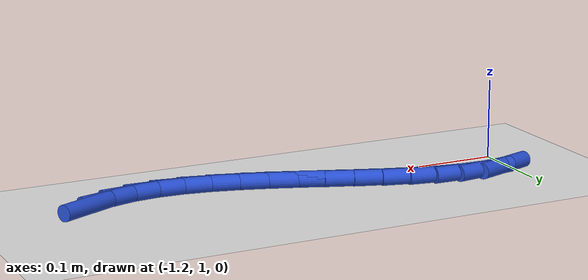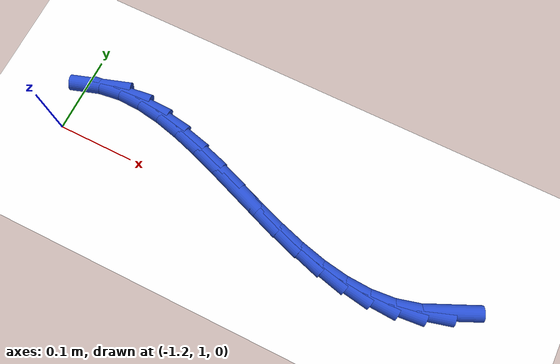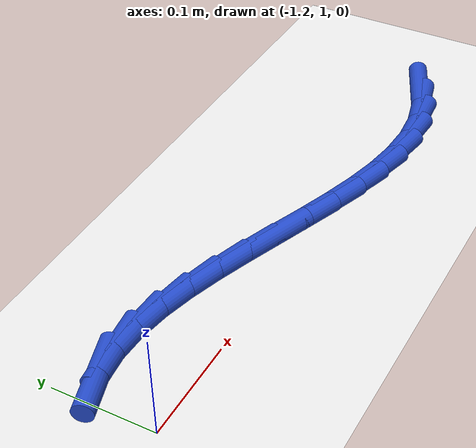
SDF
<sdf version="1.6">
 <world name="default">
  <model name="ground_plane">
   <static>1</static>
   <link name="link">
    <collision name="collision">
     <geometry><plane><normal>0 0 1</normal><size>100 100</size></plane></geometry>
     <surface><friction><ode><mu>100</mu><mu2>50</mu2></ode></friction></surface>
    </collision>
    <visual name="visual">
     <cast_shadows>0</cast_shadows>
     <geometry><plane><normal>0 0 1</normal><size>100 100</size></plane></geometry>
     <material>
      <script><uri>file://media/materials/scripts/gazebo.material</uri><name>Gazebo/WhiteGlow</name></script>
     </material>
    </visual>
   </link>
  </model>
  <model name="line">
   <link name="link_47">
    <pose>-0.6681974504036721 0.9977613590117776 0.01 0 1.57 0.42428861123072037</pose>
    <collision name="collision">
     <geometry><cylinder><radius>0.01</radius><length>0.08</length></cylinder></geometry>
    </collision>
    <visual name="visual">
     <material>
      <script><name>Gazebo/Blue</name><uri>file://media/materials/scripts/gazebo.material</uri></script>
     </material>
     <geometry><cylinder><radius>0.01</radius><length>0.08</length></cylinder></geometry>
    </visual>
   </link>
   <link name="link_48">
    <pose>-0.6982282351920168 0.9841956629761678 0.01 0 1.57 0.25434261055261337</pose>
    <collision name="collision">
     <geometry><cylinder><radius>0.01</radius><length>0.08</length></cylinder></geometry>
    </collision>
    <visual name="visual">
     <material>
      <script><name>Gazebo/Blue</name><uri>file://media/materials/scripts/gazebo.material</uri></script>
     </material>
     <geometry><cylinder><radius>0.01</radius><length>0.08</length></cylinder></geometry>
    </visual>
   </link>
   <link name="link_49">
    <pose>-0.7291592669462265 0.9761544350576148 0.01 0 1.57 0.08898181710906362</pose>
    <collision name="collision">
     <geometry><cylinder><radius>0.01</radius><length>0.08</length></cylinder></geometry>
    </collision>
    <visual name="visual">
     <material>
      <script><name>Gazebo/Blue</name><uri>file://media/materials/scripts/gazebo.material</uri></script>
     </material>
     <geometry><cylinder><radius>0.01</radius><length>0.08</length></cylinder></geometry>
    </visual>
   </link>
   <link name="link_50">
    <pose>-0.760883880210497 0.9733240472622092 0.01 0 1.57 -0.05025954373850041</pose>
    <collision name="collision">
     <geometry><cylinder><radius>0.01</radius><length>0.08</length></cylinder></geometry>
    </collision>
    <visual name="visual">
     <material>
      <script><name>Gazebo/Blue</name><uri>file://media/materials/scripts/gazebo.material</uri></script>
     </material>
     <geometry><cylinder><radius>0.01</radius><length>0.08</length></cylinder></geometry>
    </visual>
   </link>
   <link name="link_51">
    <pose>-0.7932562110636312 0.974952437187709 0.01 0 1.57 -0.1608848822753462</pose>
    <collision name="collision">
     <geometry><cylinder><radius>0.01</radius><length>0.08</length></cylinder></geometry>
    </collision>
    <visual name="visual">
     <material>
      <script><name>Gazebo/Blue</name><uri>file://media/materials/scripts/gazebo.material</uri></script>
     </material>
     <geometry><cylinder><radius>0.01</radius><length>0.08</length></cylinder></geometry>
    </visual>
   </link>
   <link name="link_52">
    <pose>-0.8261303923705751 0.9802875064849106 0.01 0 1.57 -0.24447187759985048</pose>
    <collision name="collision">
     <geometry><cylinder><radius>0.01</radius><length>0.08</length></cylinder></geometry>
    </collision>
    <visual name="visual">
     <material>
      <script><name>Gazebo/Blue</name><uri>file://media/materials/scripts/gazebo.material</uri></script>
     </material>
     <geometry><cylinder><radius>0.01</radius><length>0.08</length></cylinder></geometry>
    </visual>
   </link>
   <link name="link_53">
    <pose>-0.8593605569962735 0.9885771568046094 0.01 0 1.57 -0.30402991967846493</pose>
    <collision name="collision">
     <geometry><cylinder><radius>0.01</radius><length>0.08</length></cylinder></geometry>
    </collision>
    <visual name="visual">
     <material>
      <script><name>Gazebo/Blue</name><uri>file://media/materials/scripts/gazebo.material</uri></script>
     </material>
     <geometry><cylinder><radius>0.01</radius><length>0.08</length></cylinder></geometry>
    </visual>
   </link>
   <link name="link_54">
    <pose>-0.8928008378056719 0.9990692897976022 0.01 0 1.57 -0.3424047617772439</pose>
    <collision name="collision">
     <geometry><cylinder><radius>0.01</radius><length>0.08</length></cylinder></geometry>
    </collision>
    <visual name="visual">
     <material>
      <script><name>Gazebo/Blue</name><uri>file://media/materials/scripts/gazebo.material</uri></script>
     </material>
     <geometry><cylinder><radius>0.01</radius><length>0.08</length></cylinder></geometry>
    </visual>
   </link>
   <link name="link_55">
    <pose>-0.9263053676637159 1.011011807114685 0.01 0 1.57 -0.36157994881714006</pose>
    <collision name="collision">
     <geometry><cylinder><radius>0.01</radius><length>0.08</length></cylinder></geometry>
    </collision>
    <visual name="visual">
     <material>
      <script><name>Gazebo/Blue</name><uri>file://media/materials/scripts/gazebo.material</uri></script>
     </material>
     <geometry><cylinder><radius>0.01</radius><length>0.08</length></cylinder></geometry>
    </visual>
   </link>
   <link name="link_56">
    <pose>-0.9597282794353508 1.0236526104066535 0.01 0 1.57 -0.36242894106869983</pose>
    <collision name="collision">
     <geometry><cylinder><radius>0.01</radius><length>0.08</length></cylinder></geometry>
    </collision>
    <visual name="visual">
     <material>
      <script><name>Gazebo/Blue</name><uri>file://media/materials/scripts/gazebo.material</uri></script>
     </material>
     <geometry><cylinder><radius>0.01</radius><length>0.08</length></cylinder></geometry>
    </visual>
   </link>
   <link name="link_57">
    <pose>-0.9929237059855215 1.036239601324304 0.01 0 1.57 -0.3446148510717042</pose>
    <collision name="collision">
     <geometry><cylinder><radius>0.01</radius><length>0.08</length></cylinder></geometry>
    </collision>
    <visual name="visual">
     <material>
      <script><name>Gazebo/Blue</name><uri>file://media/materials/scripts/gazebo.material</uri></script>
     </material>
     <geometry><cylinder><radius>0.01</radius><length>0.08</length></cylinder></geometry>
    </visual>
   </link>
   <link name="link_58">
    <pose>-1.0257457801791738 1.0480206815184325 0.01 0 1.57 -0.3065028198799078</pose>
    <collision name="collision">
     <geometry><cylinder><radius>0.01</radius><length>0.08</length></cylinder></geometry>
    </collision>
    <visual name="visual">
     <material>
      <script><name>Gazebo/Blue</name><uri>file://media/materials/scripts/gazebo.material</uri></script>
     </material>
     <geometry><cylinder><radius>0.01</radius><length>0.08</length></cylinder></geometry>
    </visual>
   </link>
   <link name="link_59">
    <pose>-1.0580486348812534 1.0582437526398354 0.01 0 1.57 -0.2450834251346604</pose>
    <collision name="collision">
     <geometry><cylinder><radius>0.01</radius><length>0.08</length></cylinder></geometry>
    </collision>
    <visual name="visual">
     <material>
      <script><name>Gazebo/Blue</name><uri>file://media/materials/scripts/gazebo.material</uri></script>
     </material>
     <geometry><cylinder><radius>0.01</radius><length>0.08</length></cylinder></geometry>
    </visual>
   </link>
   <link name="link_60">
    <pose>-1.0896864029567053 1.0661567163393082 0.01 0 1.57 -0.15607536954439294</pose>
    <collision name="collision">
     <geometry><cylinder><radius>0.01</radius><length>0.08</length></cylinder></geometry>
    </collision>
    <visual name="visual">
     <material>
      <script><name>Gazebo/Blue</name><uri>file://media/materials/scripts/gazebo.material</uri></script>
     </material>
     <geometry><cylinder><radius>0.01</radius><length>0.08</length></cylinder></geometry>
    </visual>
   </link>
   <link name="link_61">
    <pose>-1.1205132172704748 1.0710074742676476 0.01 0 1.57 -0.03468491362838</pose>
    <collision name="collision">
     <geometry><cylinder><radius>0.01</radius><length>0.08</length></cylinder></geometry>
    </collision>
    <visual name="visual">
     <material>
      <script><name>Gazebo/Blue</name><uri>file://media/materials/scripts/gazebo.material</uri></script>
     </material>
     <geometry><cylinder><radius>0.01</radius><length>0.08</length></cylinder></geometry>
    </visual>
   </link>
   <link name="link_62">
    <pose>-1.1503832106875076 1.07204392807565 0.01 0 1.57 0.12209660096683038</pose>
    <collision name="collision">
     <geometry><cylinder><radius>0.01</radius><length>0.08</length></cylinder></geometry>
    </collision>
    <visual name="visual">
     <material>
      <script><name>Gazebo/Blue</name><uri>file://media/materials/scripts/gazebo.material</uri></script>
     </material>
     <geometry><cylinder><radius>0.01</radius><length>0.08</length></cylinder></geometry>
    </visual>
   </link>
   <link name="link_63">
    <pose>-1.179150516072749 1.0685139794141103 0.01 0 1.57 0.31110159453877956</pose>
    <collision name="collision">
     <geometry><cylinder><radius>0.01</radius><length>0.08</length></cylinder></geometry>
    </collision>
    <visual name="visual">
     <material>
      <script><name>Gazebo/Blue</name><uri>file://media/materials/scripts/gazebo.material</uri></script>
     </material>
     <geometry><cylinder><radius>0.01</radius><length>0.08</length></cylinder></geometry>
    </visual>
   </link>
  </model>
 </world>
</sdf>
